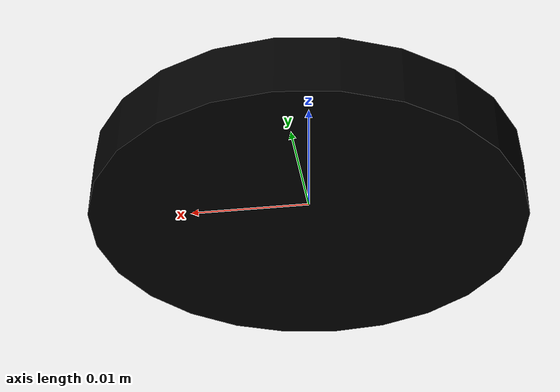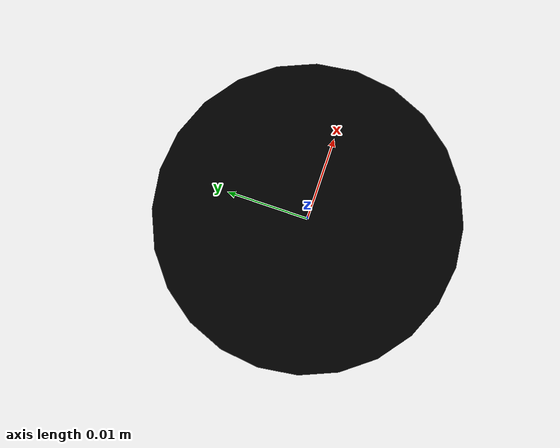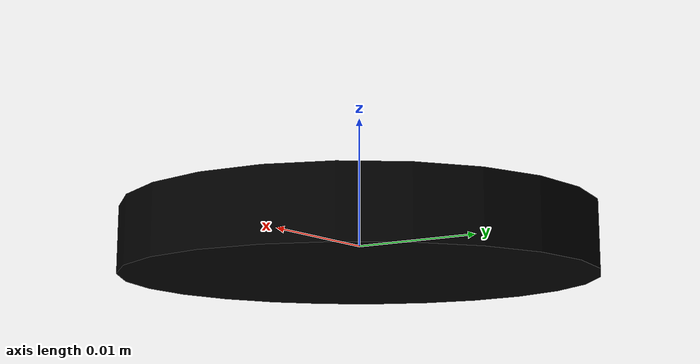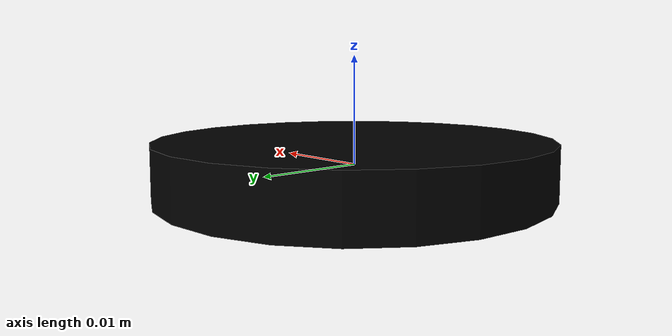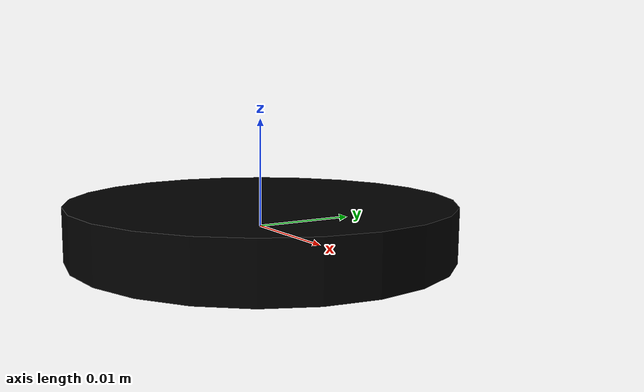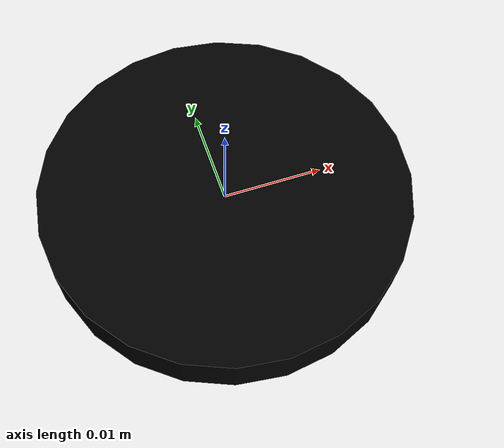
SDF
<?xml version='1.0'?>
<sdf version='1.7'>

  <model name='Landmine_0-018x0-005_Green'>
    <pose>0 0 0 0 -0 0</pose>
    <link name='Landmine'>
    <!--No collision tag to make sure the mine does not interfere with robot-->
      <visual name='Landmine_Visual'>
        <pose>0 0 0 0 -0 0</pose>
        <geometry>
		<cylinder>
   			 <radius>0.018</radius>
   			 <length>0.005</length>
 		</cylinder>
        </geometry>
        <material>
          <ambient>0 0 0 1</ambient>
          <diffuse>0 0 0 1</diffuse>
          <specular>0 0 0 0</specular>
          <emissive>0 1 0 1</emissive>
        </material>
        <meta>
          <layer>0</layer>
        </meta>
      </visual>
      <pose>0 0 0 0 -0 0</pose>
    </link>
    <static>true</static>
  </model>
</sdf>
